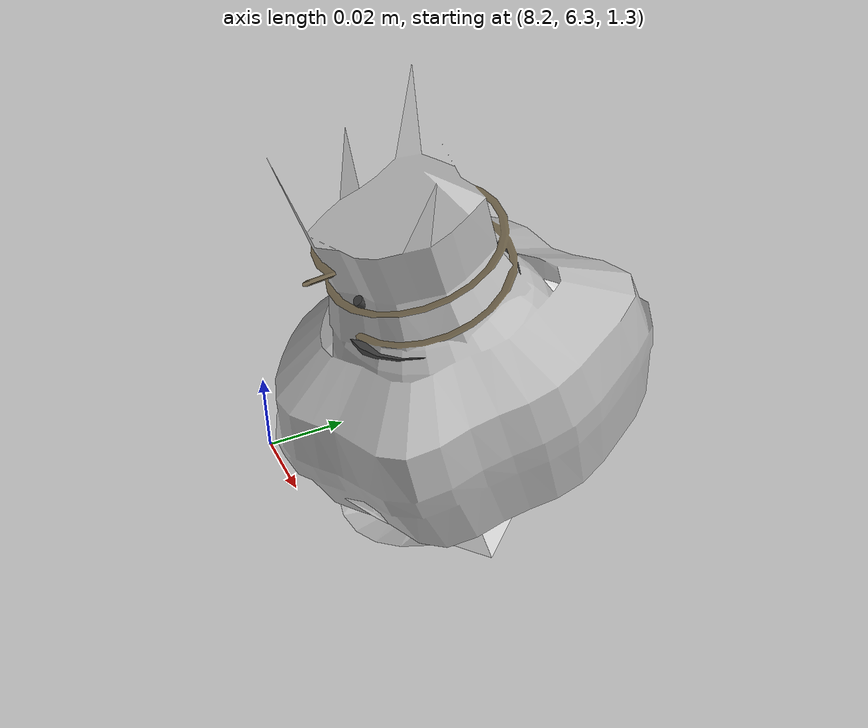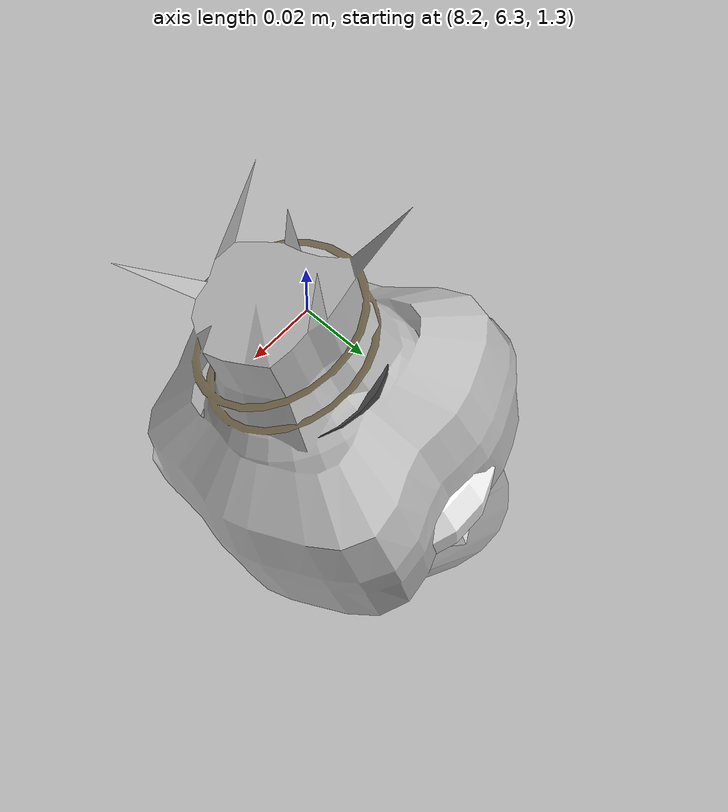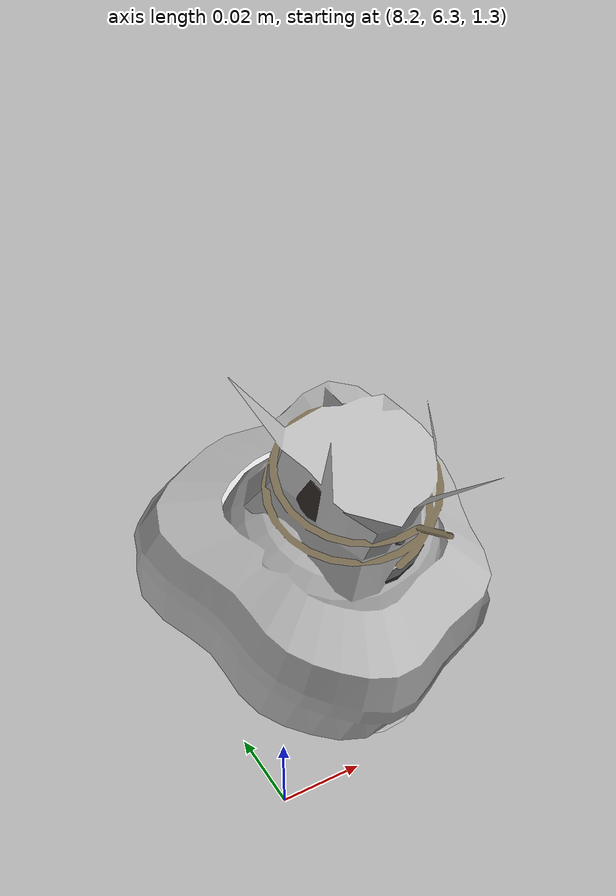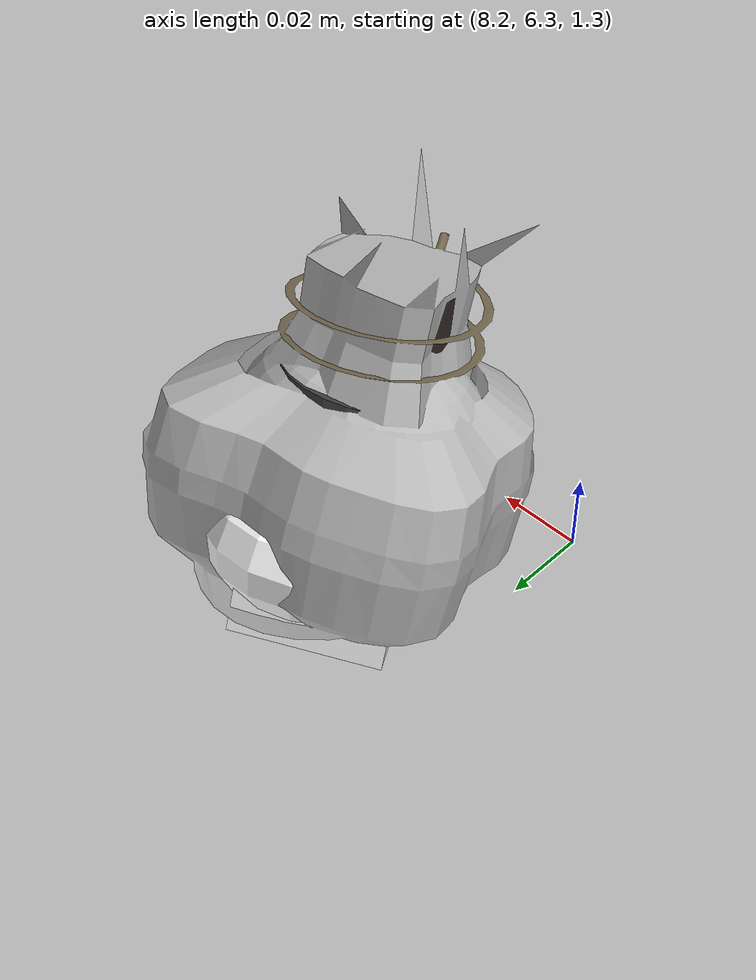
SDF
<sdf version="1.11">
 <world name="peach_orchard">
  <model name="ground">
   <static>true</static>
   <link name="link">
    <visual name="soil">
     <geometry><plane><normal>0 0 1</normal><size>32 22</size></plane></geometry>
     <material>
      <ambient>1 1 1 1</ambient>
      <diffuse>1 1 1 1</diffuse>
      <specular>0.1 0.1 0.1 1</specular>
      <pbr>
       <metal>
        <albedo_map>textures/soil_albedo.png</albedo_map>
        <normal_map type="tangent">textures/soil_normal.png</normal_map>
        <roughness>0.95</roughness>
        <metalness>0</metalness>
       </metal>
      </pbr>
     </material>
    </visual>
    <collision name="c_soil">
     <geometry><plane><normal>0 0 1</normal><size>32 22</size></plane></geometry>
    </collision>
   </link>
  </model>
  <model name="peach_tree_r4_t6_04">
   <pose>8.22993 6.34816 1.30269 0 0.337335 -1.36027</pose>
   <static>true</static>
   <link name="bag">
    <visual name="bag_mesh">
     <pose>0 0 0.0382975 0 0 -0</pose>
     <geometry>
      <mesh><uri>model://peach_sim/meshes/bagged_peach.glb</uri><scale>1.03778 1.11795 0.870399</scale></mesh>
     </geometry>
    </visual>
    <visual name="body">
     <pose>0 0 0.0202975 0 0 0</pose>
     <geometry><ellipsoid><radii>0.0389169 0.0290667 0.0219213</radii></ellipsoid></geometry>
     <material>
      <ambient>1 1 1 1</ambient>
      <diffuse>1 1 1 1</diffuse>
      <specular>0.1 0.1 0.1 1</specular>
      <pbr>
       <metal>
        <albedo_map>textures/paper_bag_albedo.png</albedo_map>
        <normal_map type="tangent">textures/paper_bag_normal.png</normal_map>
        <roughness>0.72</roughness>
        <metalness>0</metalness>
       </metal>
      </pbr>
     </material>
    </visual>
    <visual name="bottom_fold">
     <pose>0 0 0.012 0 0 0.35</pose>
     <geometry><box><size>0.0603212 0.0334267 0.022</size></box></geometry>
     <material>
      <ambient>1 1 1 1</ambient>
      <diffuse>1 1 1 1</diffuse>
      <specular>0.1 0.1 0.1 1</specular>
      <pbr>
       <metal>
        <albedo_map>textures/paper_bag_albedo.png</albedo_map>
        <normal_map type="tangent">textures/paper_bag_normal.png</normal_map>
        <roughness>0.8</roughness>
        <metalness>0</metalness>
       </metal>
      </pbr>
     </material>
    </visual>
    <visual name="fruit">
     <pose>0 0 0.0172265 0 0 0</pose>
     <geometry><sphere><radius>0.0241556</radius></sphere></geometry>
     <material>
      <ambient>1 1 1 1</ambient>
      <diffuse>1 1 1 1</diffuse>
      <specular>0.1 0.1 0.1 1</specular>
      <pbr>
       <metal>
        <albedo_map>textures/fruit_skin_albedo.png</albedo_map>
        <normal_map type="tangent">textures/fruit_skin_normal.png</normal_map>
        <roughness>0.55</roughness>
        <metalness>0</metalness>
       </metal>
      </pbr>
     </material>
    </visual>
    <visual name="neck">
     <pose>0 0 0.0495951 0 0 0</pose>
     <geometry><cylinder><radius>0.013</radius><length>0.018</length></cylinder></geometry>
     <material>
      <ambient>1 1 1 1</ambient>
      <diffuse>1 1 1 1</diffuse>
      <specular>0.1 0.1 0.1 1</specular>
      <pbr>
       <metal>
        <albedo_map>textures/paper_bag_albedo.png</albedo_map>
        <normal_map type="tangent">textures/paper_bag_normal.png</normal_map>
        <roughness>0.75</roughness>
        <metalness>0</metalness>
       </metal>
      </pbr>
     </material>
    </visual>
    <visual name="gather">
     <pose>0 0 0.0305951 0 0 0</pose>
     <geometry><cylinder><radius>0.019</radius><length>0.02</length></cylinder></geometry>
     <material>
      <ambient>1 1 1 1</ambient>
      <diffuse>1 1 1 1</diffuse>
      <specular>0.1 0.1 0.1 1</specular>
      <pbr>
       <metal>
        <albedo_map>textures/paper_bag_albedo.png</albedo_map>
        <normal_map type="tangent">textures/paper_bag_normal.png</normal_map>
        <roughness>0.8</roughness>
        <metalness>0</metalness>
       </metal>
      </pbr>
     </material>
    </visual>
    <visual name="inner_paper">
     <pose>0 0 0.0545951 0 0 0</pose>
     <geometry><cylinder><radius>0.01</radius><length>0.008</length></cylinder></geometry>
     <material>
      <ambient>0.180392 0.14902 0.133333 1</ambient>
      <diffuse>0.180392 0.14902 0.133333 1</diffuse>
      <specular>0.1 0.1 0.1 1</specular>
     </material>
    </visual>
    <visual name="wire_0">
     <pose>0 0 0.0445951 0 0 0</pose>
     <geometry><cylinder><radius>0.0205</radius><length>0.0035</length></cylinder></geometry>
     <material>
      <ambient>0.25 0.25 0.25 1</ambient>
      <diffuse>0.25 0.25 0.25 1</diffuse>
      <specular>0.1 0.1 0.1 1</specular>
     </material>
    </visual>
    <visual name="wire_1">
     <pose>0 0 0.0515951 0 0 0</pose>
     <geometry><cylinder><radius>0.0205</radius><length>0.0035</length></cylinder></geometry>
     <material>
      <ambient>0.25 0.25 0.25 1</ambient>
      <diffuse>0.25 0.25 0.25 1</diffuse>
      <specular>0.1 0.1 0.1 1</specular>
     </material>
    </visual>
    <visual name="wire_tail">
     <pose>0.01 0 0.0525951 0 0.521618 0</pose>
     <geometry><cylinder><radius>0.0012</radius><length>0.026</length></cylinder></geometry>
     <material>
      <ambient>0.25 0.25 0.25 1</ambient>
      <diffuse>0.25 0.25 0.25 1</diffuse>
      <specular>0.1 0.1 0.1 1</specular>
     </material>
    </visual>
    <collision name="c_body">
     <pose>0 0 0.0202975 0 0 0</pose>
     <geometry><cylinder><radius>0.0389169</radius><length>0.0405951</length></cylinder></geometry>
    </collision>
   </link>
  </model>
 </world>
</sdf>
